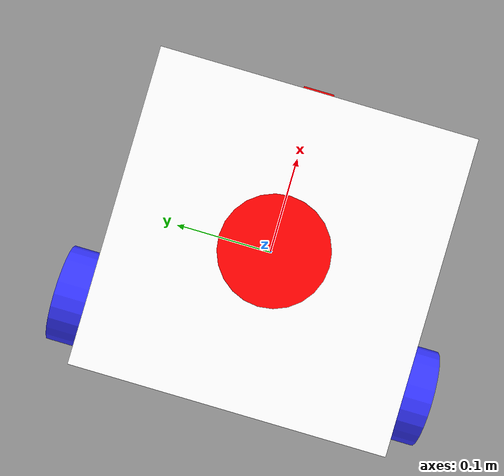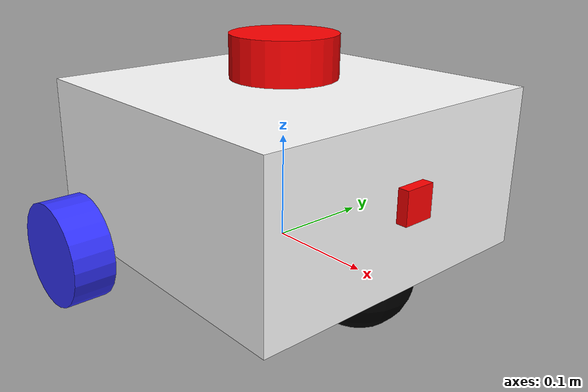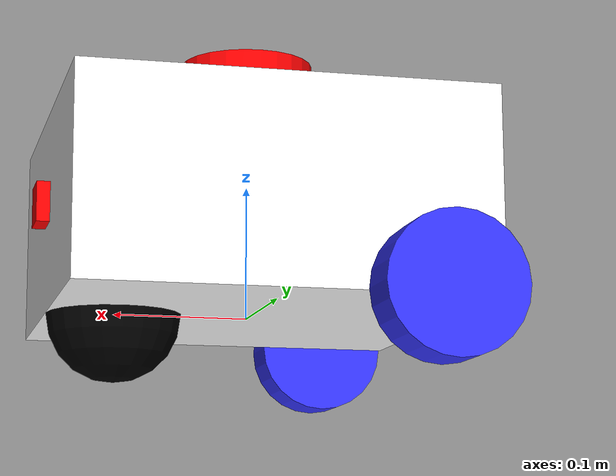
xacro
<?xml version="1.0"?>
<robot xmlns:xacro="http://www.ros.org/wiki/xacro"  name="robot">

    <xacro:include filename="$(find my_bot_one)/description/robot_core.xacro" />
    <xacro:include filename="$(find my_bot_one)/description/gazebo_control.xacro"/>
    <xacro:include filename="$(find my_bot_one)/description/lidar.xacro"/>
    <xacro:include filename="$(find my_bot_one)/description/depth_camera.xacro"/>
</robot>

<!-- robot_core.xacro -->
<robot xmlns:xacro="http://www.ros.org/wiki/xacro">

      <xacro:include filename="$(find my_bot_one)/description/inertial_macro.xacro"/>

      <material name="white">
            <color rgba="1 1 1 1" />
      </material>

      <material name="orange">
            <color rgba="1 0.3 0.1 1"/>
      </material>

      <material name="blue">
            <color rgba="0.2 0.2 1 1"/>
      </material>

      <material name="black">
            <color rgba="0 0 0 1"/>
      </material>

      <material name="red">
            <color rgba="1 0 0 1"/>
      </material>

<!-- BASE LINK -->

      <link name="base_link">

      </link>

<!-- CHASSIS LINK -->

      <joint name="chassis_joint" type="fixed">
            <parent link="base_link"/>
            <child link="chassis"/>
            <origin xyz="0 0 0"/>
      </joint>

      <link name="chassis">
            <visual>
                  <origin xyz="0 0 0.075"/>
                  <geometry>
                        <box size="0.3 0.3 0.15"/>
                  </geometry>
                  <material name="white"/>
            </visual>
             <collision>
                  <origin xyz="0 0 0.075"/>
                  <geometry>
                        <box size="0.3 0.3 0.15"/>
                  </geometry>
            </collision>
            <xacro:inertial_box mass="0.5" x="0.3" y="0.3" z="0.15">
                  <origin xyz="0 0 0.075" rpy="0 0 0"/>
            </xacro:inertial_box>
      </link>

      <gazebo reference="chassis">
            <material>Gazebo/White</material>
      </gazebo>

      <!-- LEFT WHEEL LINK -->

      <joint name="left_wheel_joint" type="continuous">
            <parent link="chassis"/>
            <child link="left_wheel"/>
            <origin xyz="-0.1 0.175 0" rpy="-${pi/2} 0 0"/>
            <axis xyz="0 0 1"/>
      </joint>

      <link name="left_wheel">
            <visual>
                  <geometry>
                        <cylinder radius="0.05" length="0.04"/>
                  </geometry>
                  <material name="blue"/>
            </visual>
            <collision>
                  <geometry>
                        <cylinder radius="0.05" length="0.04"/>
                  </geometry>
            </collision>

            <xacro:inertial_cylinder mass="0.1" length="0.04" radius="0.05">
                  <origin xyz="0 0 0" rpy="0 0 0"/>
            </xacro:inertial_cylinder>
      </link>
      <gazebo reference="left_wheel">
            <material>Gazebo/Blue</material>
            <mu1 value="1"/>
            <mu2 value="1"/>
      </gazebo>

      <!-- RIGHT WHEEL LINK -->

      <joint name="right_wheel_joint" type="continuous">
            <parent link="chassis"/>
            <child link="right_wheel"/>
            <origin xyz="-0.1 -0.175 0" rpy="${pi/2} 0 0"/>
            <axis xyz="0 0 -1"/>
      </joint>

      <link name="right_wheel">
            <visual>
                  <geometry>
                        <cylinder radius="0.05" length="0.04"/>
                  </geometry>
                  <material name="blue"/>
            </visual>
            <collision>
                  <geometry>
                        <cylinder radius="0.05" length="0.04"/>
                  </geometry>
            </collision>
            <xacro:inertial_cylinder mass="0.1" length="0.04" radius="0.05">
                  <origin xyz="0 0 0" rpy="0 0 0"/>
            </xacro:inertial_cylinder>
      </link>

      <gazebo reference="right_wheel">
            <material>Gazebo/Blue</material>
            <mu1 value="1"/>
            <mu2 value="1"/>
      </gazebo>

      <!-- CASTER WHEEL LINK -->

      <joint name="caster_wheel_joint" type="fixed">
            <parent link="chassis"/>
            <child link="caster_wheel"/>
            <origin xyz="0.1 0 0"/>
      </joint>

      <link name="caster_wheel">
            <visual>
                  <geometry>
                        <sphere radius="0.05"/>
                  </geometry>
                  <material name="black"/>
            </visual>
            <collision>
                  <geometry>
                        <sphere radius="0.05"/>
                  </geometry>
            </collision>

            <xacro:inertial_sphere mass="0.01" radius="0.05">
                  <origin xyz="0 0 0" rpy="0 0 0"/>
            </xacro:inertial_sphere>
      </link>

      <gazebo reference="caster_wheel">
            <material>Gazebo/Black</material>
            <mu1 value="0.001"/>
            <mu2 value="0.001"/>
      </gazebo>

</robot>

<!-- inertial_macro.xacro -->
<robot xmlns:xacro="http://www.ros.org/wiki/xacro">

  <!-- Macro for calculating inertial properties of a box -->
  <xacro:macro name="inertial_box" params="mass x y z *origin">
    <inertial>
      <mass value="${mass}" />
      <inertia ixx="${mass * (y*y + z*z) / 12}" ixy="0" ixz="0"
               iyy="${mass * (x*x + z*z) / 12}" iyz="0"
               izz="${mass * (x*x + y*y) / 12}" />
      <xacro:insert_block name="origin" />
    </inertial>
  </xacro:macro>

  <!-- Macro for calculating inertial properties of a cylinder -->
  <xacro:macro name="inertial_cylinder" params="mass radius length *origin">
    <inertial>
      <mass value="${mass}" />
      <inertia ixx="${mass * (3 * radius * radius + length * length) / 12}" ixy="0" ixz="0"
               iyy="${mass * (3 * radius * radius + length * length) / 12}" iyz="0"
               izz="${mass * (radius * radius) / 2}" />
      <xacro:insert_block name="origin" />
    </inertial>
  </xacro:macro>

  <!-- Macro for calculating inertial properties of a sphere -->
  <xacro:macro name="inertial_sphere" params="mass radius *origin">
    <inertial>
      <mass value="${mass}" />
      <inertia ixx="${2 * mass * radius * radius / 5}" ixy="0" ixz="0"
               iyy="${2 * mass * radius * radius / 5}" iyz="0"
               izz="${2 * mass * radius * radius / 5}" />
      <xacro:insert_block name="origin" />
    </inertial>
  </xacro:macro>

</robot>

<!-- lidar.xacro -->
<robot xmlns:xacro="http://www.ros.org/wiki/xacro">

      <joint name="lidar_joint" type="fixed">
            <parent link="chassis"/>
            <child link="laser_frame"/>
            <origin xyz="0 0 0.175" rpy="0 0 0"/>
      </joint>

      <link name="laser_frame">
            <visual>
                  <geometry>
                        <cylinder radius="0.05" length="0.04"/>
                  </geometry>
                  <material name="red"/>
            </visual>
            <collision>
                  <geometry>
                        <cylinder radius="0.05" length="0.04"/>
                  </geometry>
            </collision>
            <xacro:inertial_cylinder mass="0.1" length="0.04" radius="0.05">
                  <origin xyz="0 0 0" rpy="0 0 0"/>
            </xacro:inertial_cylinder>
      </link>

      <gazebo reference="laser_frame">
            <sensor name="laser" type="ray">
                  <pose> 0 0 0 0 0 0 </pose>
                  <visualize>false</visualize>
                  <update_rate>10</update_rate> <!-- 10 times per second-->
                  <ray>
                        <scan>
                              <horizontal>
                                    <samples>360</samples>
                                    <resolution>1</resolution>
                                    <min_angle>-3.14</min_angle>
                                    <max_angle>3.14</max_angle>
                              </horizontal>
                        </scan>
                        <range>
                              <min>0.3</min>
                              <max>12</max>
                              <resolution>0.01</resolution>
                        </range>
                  </ray>
                  <plugin name="laser_controller" filename="libgazebo_ros_ray_sensor.so">
                        <ros>
                              <argument>~/out:=scan</argument>
                        </ros>
                        <output_type>sensor_msgs/msg/LaserScan</output_type>
                        <frame_name>laser_frame</frame_name>
                  </plugin>
            </sensor>
      </gazebo>

</robot>

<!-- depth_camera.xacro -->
<robot xmlns:xacro="http://www.ros.org/wiki/xacro">

      <joint name="camera_joint" type="fixed">
            <parent link="chassis"/>
            <child link="camera_link"/>
            <origin xyz="0.155 0 0.08" rpy="0 0 0"/>
      </joint>

      <link name="camera_link">
            <visual>
                  <geometry>
                        <box size="0.010 0.03 0.03"/>
                  </geometry>
                  <material name="red"/>
            </visual>
      </link>

      <joint name="camera_optical_joint" type="fixed">
            <parent link="camera_link"/>
            <child link="camera_link_optical"/>
            <origin xyz="0 0 0" rpy="${-pi/2} 0 ${-pi/2}"/>
      </joint>

      <link name="camera_link_optical"></link>

      <gazebo reference="camera_link">
            <sensor name="camera" type="depth">
                  <pose> 0 0 0 0 0 0 </pose>
                  <visualize>true</visualize>
                  <update_rate>10</update_rate> <!--10 times per second -->
                  <camera>
                        <horizontal_fov>1.089</horizontal_fov>
                        <image>
                              <formal>B8G8R8</formal> <!-- 8bits of red,green,blue-->
                              <width>640</width> <!-- 640 by 480 pixels-->
                              <height>480</height>
                        </image>
                        <clip>
                              <near>0.05</near> <!--meters-->>
                              <far>50.0></far> <!--meters-->>
                        </clip>
                  </camera>
                  <plugin name="camera_controller" filename="libgazebo_ros_camera.so">
                        <frame_name>camera_link_optical</frame_name>
                  <min_depth>0.1</min_depth>
                  <max_depth>100</max_depth>
                  </plugin>
            </sensor>
      </gazebo>
</robot>
